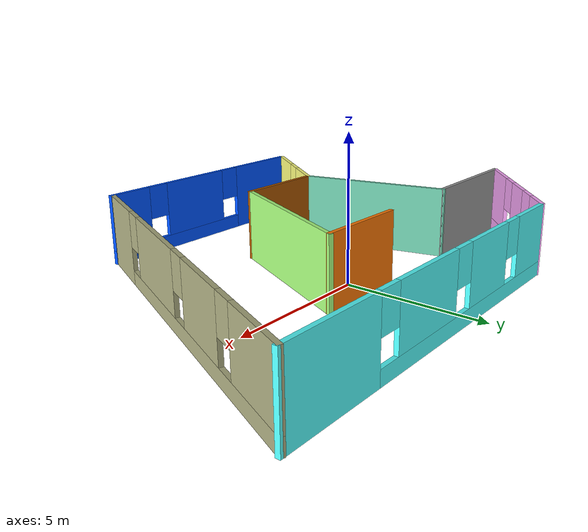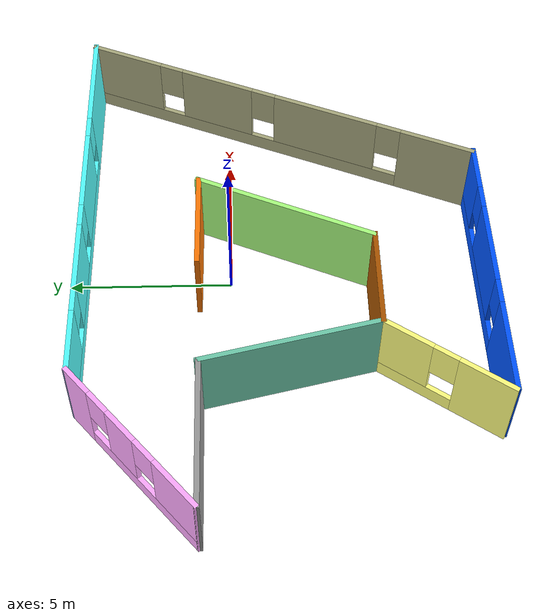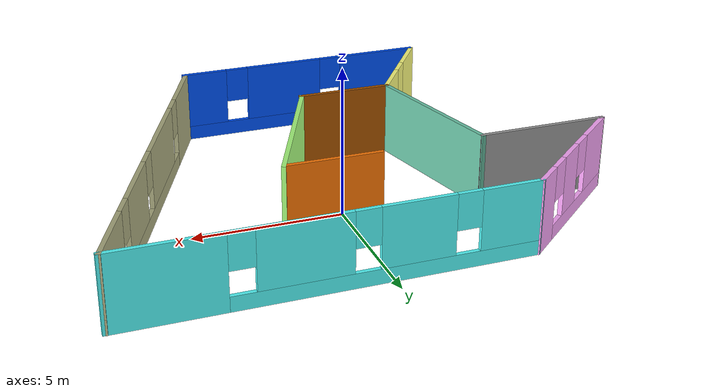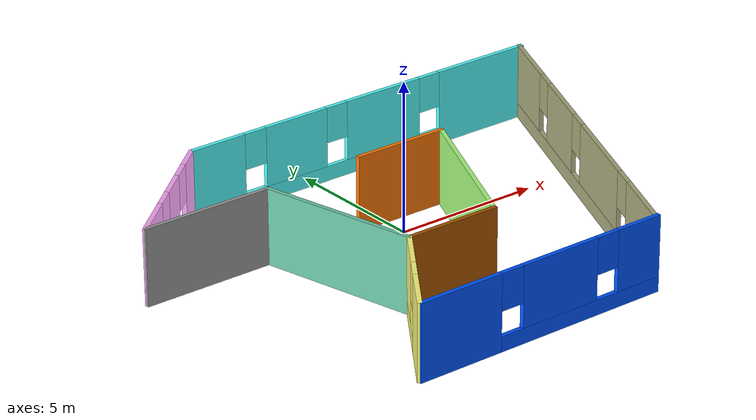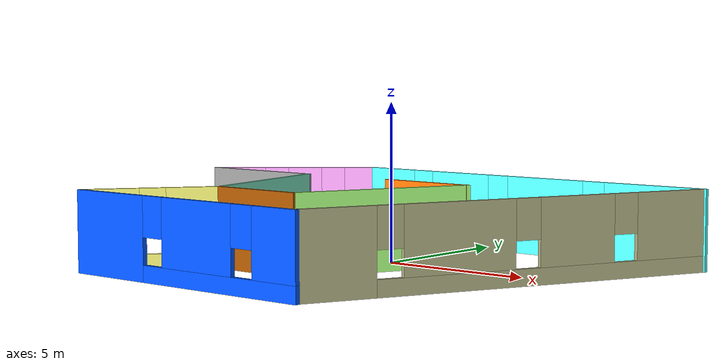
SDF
<?xml version='1.0'?>
<sdf version='1.6'>
  <model name='slam_house'>
    <pose frame=''>-0.187333 -1.58671 0 0 -0 0</pose>
    <link name='Wall_1'>
      <collision name='Wall_1_Collision'>
        <geometry>
          <box>
            <size>3.30331 0.15 2.5</size>
          </box>
        </geometry>
        <pose frame=''>0 0 1.25 0 -0 0</pose>
      </collision>
      <visual name='Wall_1_Visual'>
        <pose frame=''>0 0 1.25 0 -0 0</pose>
        <geometry>
          <box>
            <size>3.30331 0.15 2.5</size>
          </box>
        </geometry>
        <material>
          <script>
            <uri>file://media/materials/scripts/gazebo.material</uri>
            <name>Gazebo/Grey</name>
          </script>
          <ambient>0.996078 0.47451 0.0196078 1</ambient>
        </material>
      </visual>
      <pose frame=''>0.814791 2.53888 0 0 0 -0.008436</pose>
    </link>
    <link name='Wall_13'>
      <collision name='Wall_13_Collision'>
        <geometry>
          <box>
            <size>3.30331 0.15 2.5</size>
          </box>
        </geometry>
        <pose frame=''>0 0 1.25 0 -0 0</pose>
      </collision>
      <visual name='Wall_13_Visual'>
        <pose frame=''>0 0 1.25 0 -0 0</pose>
        <geometry>
          <box>
            <size>3.30331 0.15 2.5</size>
          </box>
        </geometry>
        <material>
          <script>
            <uri>file://media/materials/scripts/gazebo.material</uri>
            <name>Gazebo/Grey</name>
          </script>
          <ambient>0.666667 0.333333 0 1</ambient>
        </material>
      </visual>
      <pose frame=''>-1.47507 -2.70459 0 0 0 -0.008436</pose>
    </link>
    <link name='Wall_15'>
      <collision name='Wall_15_Collision'>
        <geometry>
          <box>
            <size>4.5 0.15 2.5</size>
          </box>
        </geometry>
        <pose frame=''>0 0 1.25 0 -0 0</pose>
      </collision>
      <visual name='Wall_15_Visual'>
        <pose frame=''>0 0 1.25 0 -0 0</pose>
        <geometry>
          <box>
            <size>4.5 0.15 2.5</size>
          </box>
        </geometry>
        <material>
          <script>
            <uri>file://media/materials/scripts/gazebo.material</uri>
            <name>Gazebo/Grey</name>
          </script>
          <ambient>1 1 1 1</ambient>
        </material>
      </visual>
      <pose frame=''>-6.43975 2.48259 0 0 -0 0</pose>
    </link>
    <link name='Wall_18'>
      <collision name='Wall_18_Collision'>
        <geometry>
          <box>
            <size>5.49398 0.15 2.5</size>
          </box>
        </geometry>
        <pose frame=''>0 0 1.25 0 -0 0</pose>
      </collision>
      <visual name='Wall_18_Visual'>
        <pose frame=''>0 0 1.25 0 -0 0</pose>
        <geometry>
          <box>
            <size>5.49398 0.15 2.5</size>
          </box>
        </geometry>
        <material>
          <script>
            <uri>file://media/materials/scripts/gazebo.material</uri>
            <name>Gazebo/Grey</name>
          </script>
          <ambient>0.435294 0.796078 0.67451 1</ambient>
        </material>
      </visual>
      <pose frame=''>-3.65821 -0.089059 0 0 0 -1.3418</pose>
    </link>
    <link name='Wall_22'>
      <collision name='Wall_22_Collision'>
        <geometry>
          <box>
            <size>5.88763 0.15 2.5</size>
          </box>
        </geometry>
        <pose frame=''>0 0 1.25 0 -0 0</pose>
      </collision>
      <visual name='Wall_22_Visual'>
        <pose frame=''>0 0 1.25 0 -0 0</pose>
        <geometry>
          <box>
            <size>5.88763 0.15 2.5</size>
          </box>
        </geometry>
        <material>
          <script>
            <uri>file://media/materials/scripts/gazebo.material</uri>
            <name>Gazebo/Grey</name>
          </script>
          <ambient>0.666667 1 0.498039 1</ambient>
        </material>
      </visual>
      <pose frame=''>1.26176 -0.067563 0 0 0 -1.98715</pose>
    </link>
    <link name='Wall_24'>
      <pose frame=''>-4.24081 -4.38599 0 0 -0 0.960088</pose>
      <visual name='Wall_24_Visual_0'>
        <pose frame=''>-1.22524 0 1.25 0 -0 0</pose>
        <geometry>
          <box>
            <size>1.77409 0.15 2.5</size>
          </box>
        </geometry>
        <material>
          <script>
            <uri>file://media/materials/scripts/gazebo.material</uri>
            <name>Gazebo/Grey</name>
          </script>
          <ambient>1 1 0.498039 1</ambient>
        </material>
      </visual>
      <collision name='Wall_24_Collision_0'>
        <geometry>
          <box>
            <size>1.77409 0.15 2.5</size>
          </box>
        </geometry>
        <pose frame=''>-1.22524 0 1.25 0 -0 0</pose>
      </collision>
      <visual name='Wall_24_Visual_1'>
        <pose frame=''>0.887046 0 0.25 0 -0 0</pose>
        <geometry>
          <box>
            <size>2.45049 0.15 0.5</size>
          </box>
        </geometry>
        <material>
          <script>
            <uri>file://media/materials/scripts/gazebo.material</uri>
            <name>Gazebo/Grey</name>
          </script>
          <ambient>1 1 0.498039 1</ambient>
        </material>
      </visual>
      <collision name='Wall_24_Collision_1'>
        <geometry>
          <box>
            <size>2.45049 0.15 0.5</size>
          </box>
        </geometry>
        <pose frame=''>0.887046 0 0.25 0 -0 0</pose>
      </collision>
      <visual name='Wall_24_Visual_2'>
        <pose frame=''>1.28705 0 1.5 0 -0 0</pose>
        <geometry>
          <box>
            <size>1.65049 0.15 2</size>
          </box>
        </geometry>
        <material>
          <script>
            <uri>file://media/materials/scripts/gazebo.material</uri>
            <name>Gazebo/Grey</name>
          </script>
          <ambient>1 1 0.498039 1</ambient>
        </material>
      </visual>
      <collision name='Wall_24_Collision_2'>
        <geometry>
          <box>
            <size>1.65049 0.15 2</size>
          </box>
        </geometry>
        <pose frame=''>1.28705 0 1.5 0 -0 0</pose>
      </collision>
      <visual name='Wall_24_Visual_3'>
        <pose frame=''>0.061803 0 1.9 0 -0 0</pose>
        <geometry>
          <box>
            <size>0.8 0.15 1.2</size>
          </box>
        </geometry>
        <material>
          <script>
            <uri>file://media/materials/scripts/gazebo.material</uri>
            <name>Gazebo/Grey</name>
          </script>
          <ambient>1 1 0.498039 1</ambient>
        </material>
      </visual>
      <collision name='Wall_24_Collision_3'>
        <geometry>
          <box>
            <size>0.8 0.15 1.2</size>
          </box>
        </geometry>
        <pose frame=''>0.061803 0 1.9 0 -0 0</pose>
      </collision>
    </link>
    <link name='Wall_6'>
      <pose frame=''>-0.962642 -6.09548 0 0 -0 0</pose>
      <visual name='Wall_6_Visual_0'>
        <pose frame=''>-3.01426 0 1.25 0 -0 0</pose>
        <geometry>
          <box>
            <size>2.93344 0.15 2.5</size>
          </box>
        </geometry>
        <material>
          <script>
            <uri>file://media/materials/scripts/gazebo.material</uri>
            <name>Gazebo/Grey</name>
          </script>
          <ambient>0 0.333333 1 1</ambient>
        </material>
      </visual>
      <collision name='Wall_6_Collision_0'>
        <geometry>
          <box>
            <size>2.93344 0.15 2.5</size>
          </box>
        </geometry>
        <pose frame=''>-3.01426 0 1.25 0 -0 0</pose>
      </collision>
      <visual name='Wall_6_Visual_1'>
        <pose frame=''>1.46672 0 0.25 0 -0 0</pose>
        <geometry>
          <box>
            <size>6.02853 0.15 0.5</size>
          </box>
        </geometry>
        <material>
          <script>
            <uri>file://media/materials/scripts/gazebo.material</uri>
            <name>Gazebo/Grey</name>
          </script>
          <ambient>0 0.333333 1 1</ambient>
        </material>
      </visual>
      <collision name='Wall_6_Collision_1'>
        <geometry>
          <box>
            <size>6.02853 0.15 0.5</size>
          </box>
        </geometry>
        <pose frame=''>1.46672 0 0.25 0 -0 0</pose>
      </collision>
      <visual name='Wall_6_Visual_2'>
        <pose frame=''>0.652729 0 1.5 0 -0 0</pose>
        <geometry>
          <box>
            <size>2.80055 0.15 2</size>
          </box>
        </geometry>
        <material>
          <script>
            <uri>file://media/materials/scripts/gazebo.material</uri>
            <name>Gazebo/Grey</name>
          </script>
          <ambient>0 0.333333 1 1</ambient>
        </material>
      </visual>
      <collision name='Wall_6_Collision_2'>
        <geometry>
          <box>
            <size>2.80055 0.15 2</size>
          </box>
        </geometry>
        <pose frame=''>0.652729 0 1.5 0 -0 0</pose>
      </collision>
      <visual name='Wall_6_Visual_3'>
        <pose frame=''>3.667 0 1.5 0 -0 0</pose>
        <geometry>
          <box>
            <size>1.62799 0.15 2</size>
          </box>
        </geometry>
        <material>
          <script>
            <uri>file://media/materials/scripts/gazebo.material</uri>
            <name>Gazebo/Grey</name>
          </script>
          <ambient>0 0.333333 1 1</ambient>
        </material>
      </visual>
      <collision name='Wall_6_Collision_3'>
        <geometry>
          <box>
            <size>1.62799 0.15 2</size>
          </box>
        </geometry>
        <pose frame=''>3.667 0 1.5 0 -0 0</pose>
      </collision>
      <visual name='Wall_6_Visual_4'>
        <pose frame=''>-1.14754 0 1.9 0 -0 0</pose>
        <geometry>
          <box>
            <size>0.8 0.15 1.2</size>
          </box>
        </geometry>
        <material>
          <script>
            <uri>file://media/materials/scripts/gazebo.material</uri>
            <name>Gazebo/Grey</name>
          </script>
          <ambient>0 0.333333 1 1</ambient>
        </material>
      </visual>
      <collision name='Wall_6_Collision_4'>
        <geometry>
          <box>
            <size>0.8 0.15 1.2</size>
          </box>
        </geometry>
        <pose frame=''>-1.14754 0 1.9 0 -0 0</pose>
      </collision>
      <visual name='Wall_6_Visual_5'>
        <pose frame=''>2.453 0 1.9 0 -0 0</pose>
        <geometry>
          <box>
            <size>0.8 0.15 1.2</size>
          </box>
        </geometry>
        <material>
          <script>
            <uri>file://media/materials/scripts/gazebo.material</uri>
            <name>Gazebo/Grey</name>
          </script>
          <ambient>0 0.333333 1 1</ambient>
        </material>
      </visual>
      <collision name='Wall_6_Collision_5'>
        <geometry>
          <box>
            <size>0.8 0.15 1.2</size>
          </box>
        </geometry>
        <pose frame=''>2.453 0 1.9 0 -0 0</pose>
      </collision>
    </link>
    <link name='Wall_7'>
      <pose frame=''>6.00891 0.004844 0 0 -0 1.16466</pose>
      <visual name='Wall_7_Visual_0'>
        <pose frame=''>-5.4617 0 1.25 0 -0 0</pose>
        <geometry>
          <box>
            <size>2.41953 0.15 2.5</size>
          </box>
        </geometry>
        <material>
          <script>
            <uri>file://media/materials/scripts/gazebo.material</uri>
            <name>Gazebo/Grey</name>
          </script>
          <ambient>0.666667 0.666667 0.498039 1</ambient>
        </material>
      </visual>
      <collision name='Wall_7_Collision_0'>
        <geometry>
          <box>
            <size>2.41953 0.15 2.5</size>
          </box>
        </geometry>
        <pose frame=''>-5.4617 0 1.25 0 -0 0</pose>
      </collision>
      <visual name='Wall_7_Visual_1'>
        <pose frame=''>1.20976 0 0.25 0 -0 0</pose>
        <geometry>
          <box>
            <size>10.9234 0.15 0.5</size>
          </box>
        </geometry>
        <material>
          <script>
            <uri>file://media/materials/scripts/gazebo.material</uri>
            <name>Gazebo/Grey</name>
          </script>
          <ambient>0.666667 0.666667 0.498039 1</ambient>
        </material>
      </visual>
      <collision name='Wall_7_Collision_1'>
        <geometry>
          <box>
            <size>10.9234 0.15 0.5</size>
          </box>
        </geometry>
        <pose frame=''>1.20976 0 0.25 0 -0 0</pose>
      </collision>
      <visual name='Wall_7_Visual_2'>
        <pose frame=''>-1.69263 0 1.5 0 -0 0</pose>
        <geometry>
          <box>
            <size>3.5186 0.15 2</size>
          </box>
        </geometry>
        <material>
          <script>
            <uri>file://media/materials/scripts/gazebo.material</uri>
            <name>Gazebo/Grey</name>
          </script>
          <ambient>0.666667 0.666667 0.498039 1</ambient>
        </material>
      </visual>
      <collision name='Wall_7_Collision_2'>
        <geometry>
          <box>
            <size>3.5186 0.15 2</size>
          </box>
        </geometry>
        <pose frame=''>-1.69263 0 1.5 0 -0 0</pose>
      </collision>
      <visual name='Wall_7_Visual_3'>
        <pose frame=''>2.11606 0 1.5 0 -0 0</pose>
        <geometry>
          <box>
            <size>2.49879 0.15 2</size>
          </box>
        </geometry>
        <material>
          <script>
            <uri>file://media/materials/scripts/gazebo.material</uri>
            <name>Gazebo/Grey</name>
          </script>
          <ambient>0.666667 0.666667 0.498039 1</ambient>
        </material>
      </visual>
      <collision name='Wall_7_Collision_3'>
        <geometry>
          <box>
            <size>2.49879 0.15 2</size>
          </box>
        </geometry>
        <pose frame=''>2.11606 0 1.5 0 -0 0</pose>
      </collision>
      <visual name='Wall_7_Visual_4'>
        <pose frame=''>5.41846 0 1.5 0 -0 0</pose>
        <geometry>
          <box>
            <size>2.506 0.15 2</size>
          </box>
        </geometry>
        <material>
          <script>
            <uri>file://media/materials/scripts/gazebo.material</uri>
            <name>Gazebo/Grey</name>
          </script>
          <ambient>0.666667 0.666667 0.498039 1</ambient>
        </material>
      </visual>
      <collision name='Wall_7_Collision_4'>
        <geometry>
          <box>
            <size>2.506 0.15 2</size>
          </box>
        </geometry>
        <pose frame=''>5.41846 0 1.5 0 -0 0</pose>
      </collision>
      <visual name='Wall_7_Visual_5'>
        <pose frame=''>-3.85193 0 1.9 0 -0 0</pose>
        <geometry>
          <box>
            <size>0.8 0.15 1.2</size>
          </box>
        </geometry>
        <material>
          <script>
            <uri>file://media/materials/scripts/gazebo.material</uri>
            <name>Gazebo/Grey</name>
          </script>
          <ambient>0.666667 0.666667 0.498039 1</ambient>
        </material>
      </visual>
      <collision name='Wall_7_Collision_5'>
        <geometry>
          <box>
            <size>0.8 0.15 1.2</size>
          </box>
        </geometry>
        <pose frame=''>-3.85193 0 1.9 0 -0 0</pose>
      </collision>
      <visual name='Wall_7_Visual_6'>
        <pose frame=''>0.466669 0 1.9 0 -0 0</pose>
        <geometry>
          <box>
            <size>0.8 0.15 1.2</size>
          </box>
        </geometry>
        <material>
          <script>
            <uri>file://media/materials/scripts/gazebo.material</uri>
            <name>Gazebo/Grey</name>
          </script>
          <ambient>0.666667 0.666667 0.498039 1</ambient>
        </material>
      </visual>
      <collision name='Wall_7_Collision_6'>
        <geometry>
          <box>
            <size>0.8 0.15 1.2</size>
          </box>
        </geometry>
        <pose frame=''>0.466669 0 1.9 0 -0 0</pose>
      </collision>
      <visual name='Wall_7_Visual_7'>
        <pose frame=''>3.76546 0 1.9 0 -0 0</pose>
        <geometry>
          <box>
            <size>0.8 0.15 1.2</size>
          </box>
        </geometry>
        <material>
          <script>
            <uri>file://media/materials/scripts/gazebo.material</uri>
            <name>Gazebo/Grey</name>
          </script>
          <ambient>0.666667 0.666667 0.498039 1</ambient>
        </material>
      </visual>
      <collision name='Wall_7_Collision_7'>
        <geometry>
          <box>
            <size>0.8 0.15 1.2</size>
          </box>
        </geometry>
        <pose frame=''>3.76546 0 1.9 0 -0 0</pose>
      </collision>
    </link>
    <link name='Wall_8'>
      <pose frame=''>2.09552 6.06471 0 0 -0 3.14159</pose>
      <visual name='Wall_8_Visual_0'>
        <pose frame=''>-4.84837 0 1.25 0 -0 0</pose>
        <geometry>
          <box>
            <size>3.55326 0.15 2.5</size>
          </box>
        </geometry>
        <material>
          <script>
            <uri>file://media/materials/scripts/gazebo.material</uri>
            <name>Gazebo/Grey</name>
          </script>
          <ambient>0.333333 1 1 1</ambient>
        </material>
      </visual>
      <collision name='Wall_8_Collision_0'>
        <geometry>
          <box>
            <size>3.55326 0.15 2.5</size>
          </box>
        </geometry>
        <pose frame=''>-4.84837 0 1.25 0 -0 0</pose>
      </collision>
      <visual name='Wall_8_Visual_1'>
        <pose frame=''>1.77663 0 0.25 0 -0 0</pose>
        <geometry>
          <box>
            <size>9.69674 0.15 0.5</size>
          </box>
        </geometry>
        <material>
          <script>
            <uri>file://media/materials/scripts/gazebo.material</uri>
            <name>Gazebo/Grey</name>
          </script>
          <ambient>0.333333 1 1 1</ambient>
        </material>
      </visual>
      <collision name='Wall_8_Collision_1'>
        <geometry>
          <box>
            <size>9.69674 0.15 0.5</size>
          </box>
        </geometry>
        <pose frame=''>1.77663 0 0.25 0 -0 0</pose>
      </collision>
      <visual name='Wall_8_Visual_2'>
        <pose frame=''>-0.810787 0 1.5 0 -0 0</pose>
        <geometry>
          <box>
            <size>2.92191 0.15 2</size>
          </box>
        </geometry>
        <material>
          <script>
            <uri>file://media/materials/scripts/gazebo.material</uri>
            <name>Gazebo/Grey</name>
          </script>
          <ambient>0.333333 1 1 1</ambient>
        </material>
      </visual>
      <collision name='Wall_8_Collision_2'>
        <geometry>
          <box>
            <size>2.92191 0.15 2</size>
          </box>
        </geometry>
        <pose frame=''>-0.810787 0 1.5 0 -0 0</pose>
      </collision>
      <visual name='Wall_8_Visual_3'>
        <pose frame=''>2.62794 0 1.5 0 -0 0</pose>
        <geometry>
          <box>
            <size>2.35554 0.15 2</size>
          </box>
        </geometry>
        <material>
          <script>
            <uri>file://media/materials/scripts/gazebo.material</uri>
            <name>Gazebo/Grey</name>
          </script>
          <ambient>0.333333 1 1 1</ambient>
        </material>
      </visual>
      <collision name='Wall_8_Collision_3'>
        <geometry>
          <box>
            <size>2.35554 0.15 2</size>
          </box>
        </geometry>
        <pose frame=''>2.62794 0 1.5 0 -0 0</pose>
      </collision>
      <visual name='Wall_8_Visual_4'>
        <pose frame=''>5.61535 0 1.5 0 -0 0</pose>
        <geometry>
          <box>
            <size>2.0193 0.15 2</size>
          </box>
        </geometry>
        <material>
          <script>
            <uri>file://media/materials/scripts/gazebo.material</uri>
            <name>Gazebo/Grey</name>
          </script>
          <ambient>0.333333 1 1 1</ambient>
        </material>
      </visual>
      <collision name='Wall_8_Collision_4'>
        <geometry>
          <box>
            <size>2.0193 0.15 2</size>
          </box>
        </geometry>
        <pose frame=''>5.61535 0 1.5 0 -0 0</pose>
      </collision>
      <visual name='Wall_8_Visual_5'>
        <pose frame=''>-2.67174 0 1.9 0 -0 0</pose>
        <geometry>
          <box>
            <size>0.8 0.15 1.2</size>
          </box>
        </geometry>
        <material>
          <script>
            <uri>file://media/materials/scripts/gazebo.material</uri>
            <name>Gazebo/Grey</name>
          </script>
          <ambient>0.333333 1 1 1</ambient>
        </material>
      </visual>
      <collision name='Wall_8_Collision_5'>
        <geometry>
          <box>
            <size>0.8 0.15 1.2</size>
          </box>
        </geometry>
        <pose frame=''>-2.67174 0 1.9 0 -0 0</pose>
      </collision>
      <visual name='Wall_8_Visual_6'>
        <pose frame=''>1.05017 0 1.9 0 -0 0</pose>
        <geometry>
          <box>
            <size>0.8 0.15 1.2</size>
          </box>
        </geometry>
        <material>
          <script>
            <uri>file://media/materials/scripts/gazebo.material</uri>
            <name>Gazebo/Grey</name>
          </script>
          <ambient>0.333333 1 1 1</ambient>
        </material>
      </visual>
      <collision name='Wall_8_Collision_6'>
        <geometry>
          <box>
            <size>0.8 0.15 1.2</size>
          </box>
        </geometry>
        <pose frame=''>1.05017 0 1.9 0 -0 0</pose>
      </collision>
      <visual name='Wall_8_Visual_7'>
        <pose frame=''>4.20571 0 1.9 0 -0 0</pose>
        <geometry>
          <box>
            <size>0.8 0.15 1.2</size>
          </box>
        </geometry>
        <material>
          <script>
            <uri>file://media/materials/scripts/gazebo.material</uri>
            <name>Gazebo/Grey</name>
          </script>
          <ambient>0.333333 1 1 1</ambient>
        </material>
      </visual>
      <collision name='Wall_8_Collision_7'>
        <geometry>
          <box>
            <size>0.8 0.15 1.2</size>
          </box>
        </geometry>
        <pose frame=''>4.20571 0 1.9 0 -0 0</pose>
      </collision>
    </link>
    <link name='Wall_9'>
      <pose frame=''>-6.54991 4.28895 0 0 0 -2.43132</pose>
      <visual name='Wall_9_Visual_0'>
        <pose frame=''>-2.26231 0 1.25 0 -0 0</pose>
        <geometry>
          <box>
            <size>1.07219 0.15 2.5</size>
          </box>
        </geometry>
        <material>
          <script>
            <uri>file://media/materials/scripts/gazebo.material</uri>
            <name>Gazebo/Grey</name>
          </script>
          <ambient>1 0.666667 1 1</ambient>
        </material>
      </visual>
      <collision name='Wall_9_Collision_0'>
        <geometry>
          <box>
            <size>1.07219 0.15 2.5</size>
          </box>
        </geometry>
        <pose frame=''>-2.26231 0 1.25 0 -0 0</pose>
      </collision>
      <visual name='Wall_9_Visual_1'>
        <pose frame=''>0.536094 0 0.25 0 -0 0</pose>
        <geometry>
          <box>
            <size>4.52461 0.15 0.5</size>
          </box>
        </geometry>
        <material>
          <script>
            <uri>file://media/materials/scripts/gazebo.material</uri>
            <name>Gazebo/Grey</name>
          </script>
          <ambient>1 0.666667 1 1</ambient>
        </material>
      </visual>
      <collision name='Wall_9_Collision_1'>
        <geometry>
          <box>
            <size>4.52461 0.15 0.5</size>
          </box>
        </geometry>
        <pose frame=''>0.536094 0 0.25 0 -0 0</pose>
      </collision>
      <visual name='Wall_9_Visual_2'>
        <pose frame=''>-0.341002 0 1.5 0 -0 0</pose>
        <geometry>
          <box>
            <size>1.17042 0.15 2</size>
          </box>
        </geometry>
        <material>
          <script>
            <uri>file://media/materials/scripts/gazebo.material</uri>
            <name>Gazebo/Grey</name>
          </script>
          <ambient>1 0.666667 1 1</ambient>
        </material>
      </visual>
      <collision name='Wall_9_Collision_2'>
        <geometry>
          <box>
            <size>1.17042 0.15 2</size>
          </box>
        </geometry>
        <pose frame=''>-0.341002 0 1.5 0 -0 0</pose>
      </collision>
      <visual name='Wall_9_Visual_3'>
        <pose frame=''>1.92131 0 1.5 0 -0 0</pose>
        <geometry>
          <box>
            <size>1.75419 0.15 2</size>
          </box>
        </geometry>
        <material>
          <script>
            <uri>file://media/materials/scripts/gazebo.material</uri>
            <name>Gazebo/Grey</name>
          </script>
          <ambient>1 0.666667 1 1</ambient>
        </material>
      </visual>
      <collision name='Wall_9_Collision_3'>
        <geometry>
          <box>
            <size>1.75419 0.15 2</size>
          </box>
        </geometry>
        <pose frame=''>1.92131 0 1.5 0 -0 0</pose>
      </collision>
      <visual name='Wall_9_Visual_4'>
        <pose frame=''>-1.32621 0 1.9 0 -0 0</pose>
        <geometry>
          <box>
            <size>0.8 0.15 1.2</size>
          </box>
        </geometry>
        <material>
          <script>
            <uri>file://media/materials/scripts/gazebo.material</uri>
            <name>Gazebo/Grey</name>
          </script>
          <ambient>1 0.666667 1 1</ambient>
        </material>
      </visual>
      <collision name='Wall_9_Collision_4'>
        <geometry>
          <box>
            <size>0.8 0.15 1.2</size>
          </box>
        </geometry>
        <pose frame=''>-1.32621 0 1.9 0 -0 0</pose>
      </collision>
      <visual name='Wall_9_Visual_5'>
        <pose frame=''>0.644209 0 1.9 0 -0 0</pose>
        <geometry>
          <box>
            <size>0.8 0.15 1.2</size>
          </box>
        </geometry>
        <material>
          <script>
            <uri>file://media/materials/scripts/gazebo.material</uri>
            <name>Gazebo/Grey</name>
          </script>
          <ambient>1 0.666667 1 1</ambient>
        </material>
      </visual>
      <collision name='Wall_9_Collision_5'>
        <geometry>
          <box>
            <size>0.8 0.15 1.2</size>
          </box>
        </geometry>
        <pose frame=''>0.644209 0 1.9 0 -0 0</pose>
      </collision>
    </link>
    <static>1</static>
  </model>
</sdf>
